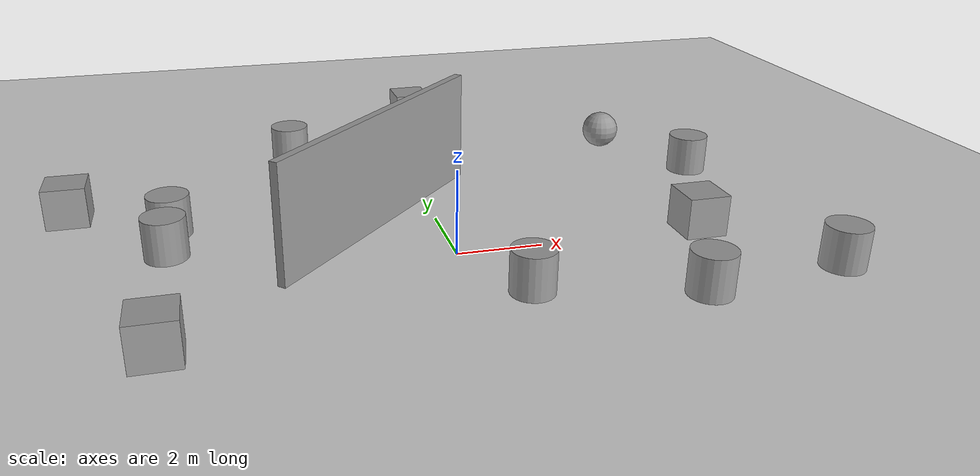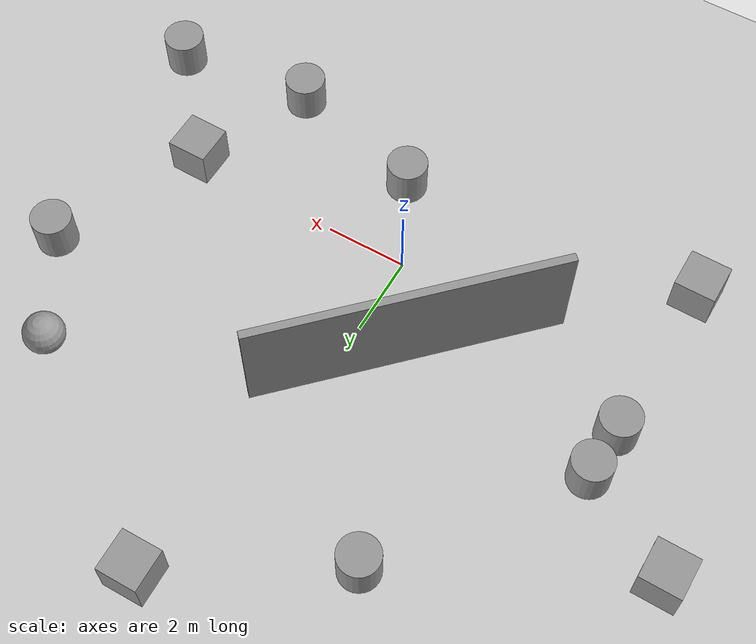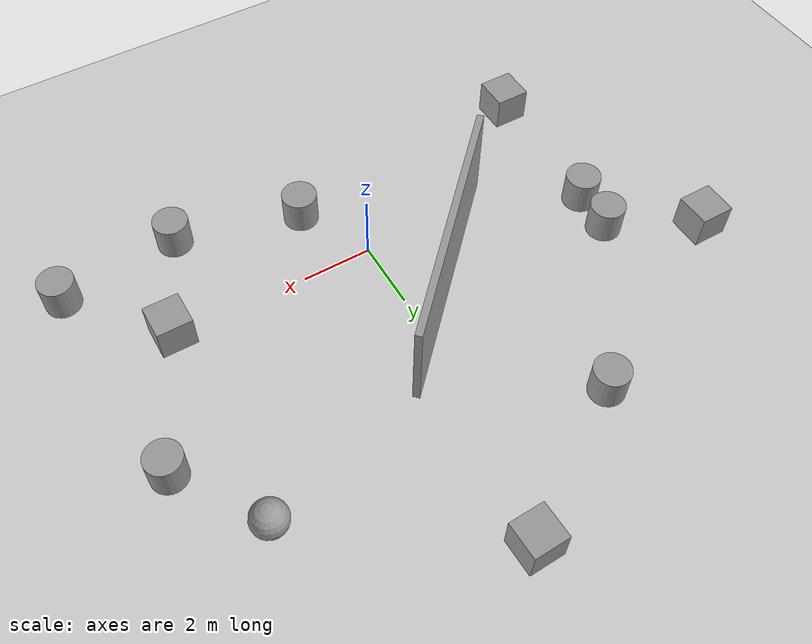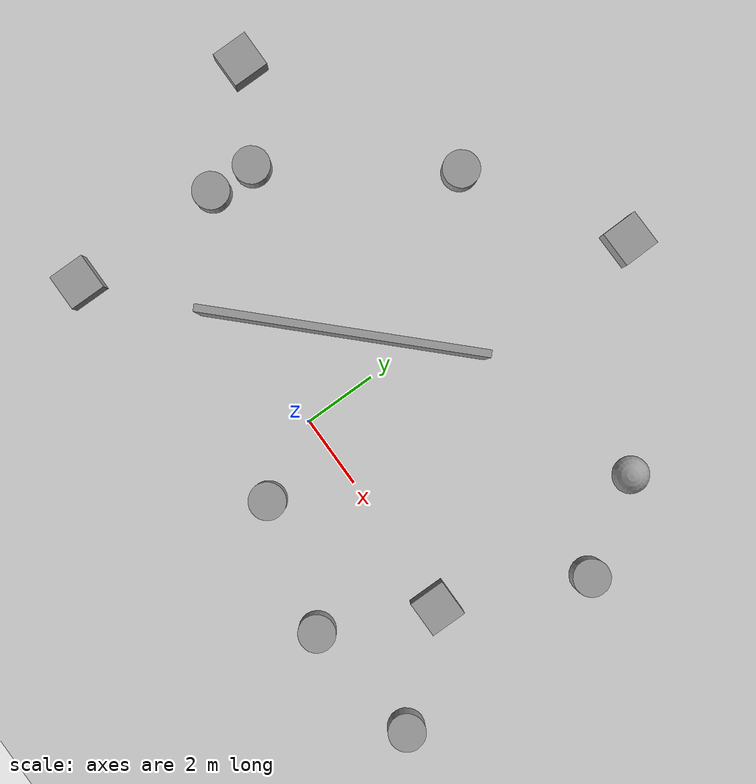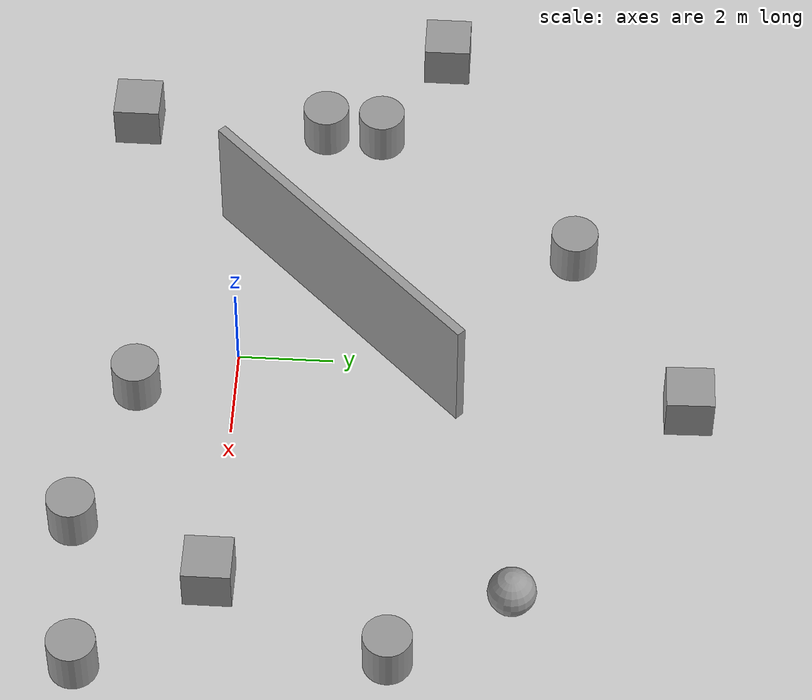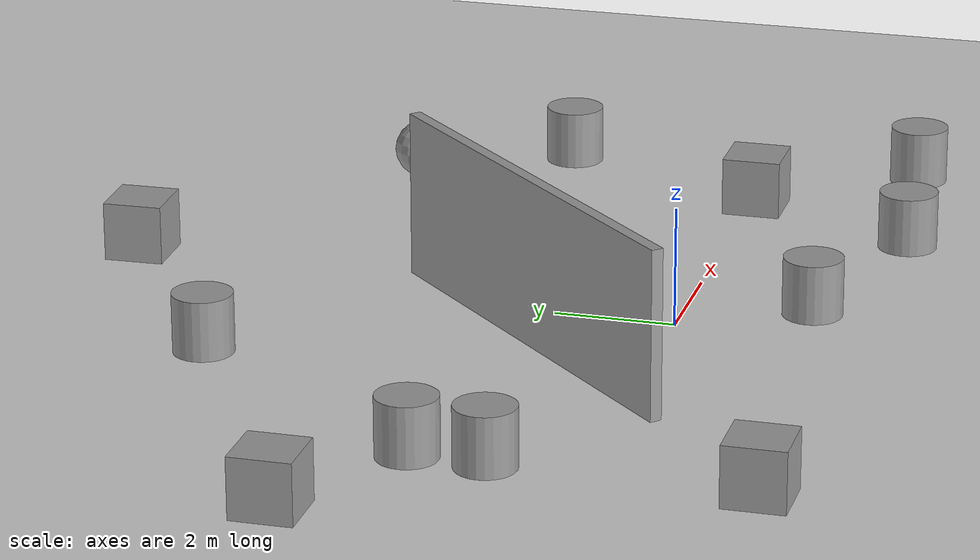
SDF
<sdf version="1.4">
 <world name="default">
  <light name="sun" type="directional">
   <pose>0 0 10 0 -0 0</pose>
   <diffuse>0.8 0.8 0.8 1</diffuse>
   <specular>0.2 0.2 0.2 1</specular>
   <attenuation>
    <range>1000</range>
    <constant>0.9</constant>
    <linear>0.01</linear>
    <quadratic>0.001</quadratic>
   </attenuation>
   <direction>-0.5 0.1 -0.9</direction>
  </light>
  <model name="ground_plane">
   <static>1</static>
   <link name="link">
    <collision name="collision">
     <geometry><plane><normal>0 0 1</normal><size>100 100</size></plane></geometry>
     <surface><friction><ode><mu>100</mu><mu2>50</mu2></ode></friction></surface>
    </collision>
    <visual name="visual">
     <cast_shadows>0</cast_shadows>
     <geometry><plane><normal>0 0 1</normal><size>100 100</size></plane></geometry>
     <material>
      <script><uri>file://media/materials/scripts/gazebo.material</uri><name>Gazebo/Grey</name></script>
     </material>
    </visual>
    <velocity_decay><linear>0</linear><angular>0</angular></velocity_decay>
   </link>
  </model>
  <physics type="ode">
   <max_step_size>0.001</max_step_size>
   <real_time_factor>1</real_time_factor>
   <real_time_update_rate>0</real_time_update_rate>
   <gravity>0 0 -9.8</gravity>
  </physics>
  <scene><ambient>0.4 0.4 0.4 1</ambient><background>0.7 0.7 0.7 1</background><shadows>1</shadows></scene>
  <spherical_coordinates>
   <surface_model>EARTH_WGS84</surface_model>
   <latitude_deg>0</latitude_deg>
   <longitude_deg>0</longitude_deg>
   <elevation>0</elevation>
   <heading_deg>0</heading_deg>
  </spherical_coordinates>
  <model name="unit_cylinder_2_0">
   <pose>4.57299 -3 0.499992 0 -0 0</pose>
   <link name="link">
    <inertial>
     <mass>1</mass>
     <inertia><ixx>1</ixx><ixy>0</ixy><ixz>0</ixz><iyy>1</iyy><iyz>0</iyz><izz>1</izz></inertia>
    </inertial>
    <collision name="collision">
     <geometry><cylinder><radius>0.5</radius><length>1</length></cylinder></geometry>
    </collision>
    <visual name="visual">
     <geometry><cylinder><radius>0.5</radius><length>1</length></cylinder></geometry>
     <material>
      <script><uri>file://media/materials/scripts/gazebo.material</uri><name>Gazebo/Grey</name></script>
     </material>
    </visual>
    <velocity_decay><linear>0</linear><angular>0</angular></velocity_decay>
   </link>
   <static>0</static>
  </model>
  <model name="unit_cylinder_3_0">
   <pose>7.53141 3.59894 0.499998 0 -0 0</pose>
   <link name="link">
    <inertial>
     <mass>1</mass>
     <inertia><ixx>1</ixx><ixy>0</ixy><ixz>0</ixz><iyy>1</iyy><iyz>0</iyz><izz>1</izz></inertia>
    </inertial>
    <collision name="collision">
     <geometry><cylinder><radius>0.5</radius><length>1</length></cylinder></geometry>
    </collision>
    <visual name="visual">
     <geometry><cylinder><radius>0.5</radius><length>1</length></cylinder></geometry>
     <material>
      <script><uri>file://media/materials/scripts/gazebo.material</uri><name>Gazebo/Grey</name></script>
     </material>
    </visual>
    <velocity_decay><linear>0</linear><angular>0</angular></velocity_decay>
   </link>
   <static>0</static>
  </model>
  <model name="unit_cylinder_5_0">
   <pose>8 -2.59398 0.499992 0 -0 0</pose>
   <link name="link">
    <inertial>
     <mass>1</mass>
     <inertia><ixx>1</ixx><ixy>0</ixy><ixz>0</ixz><iyy>1</iyy><iyz>0</iyz><izz>1</izz></inertia>
    </inertial>
    <collision name="collision">
     <geometry><cylinder><radius>0.5</radius><length>1</length></cylinder></geometry>
    </collision>
    <visual name="visual">
     <geometry><cylinder><radius>0.5</radius><length>1</length></cylinder></geometry>
     <material>
      <script><uri>file://media/materials/scripts/gazebo.material</uri><name>Gazebo/Grey</name></script>
     </material>
    </visual>
    <velocity_decay><linear>0</linear><angular>0</angular></velocity_decay>
   </link>
   <static>0</static>
  </model>
  <model name="unit_cylinder_7_0">
   <pose>-6.23191 2.65627 0.499992 0 0 -9e-06</pose>
   <link name="link">
    <inertial>
     <mass>1</mass>
     <inertia><ixx>1</ixx><ixy>0</ixy><ixz>0</ixz><iyy>1</iyy><iyz>0</iyz><izz>1</izz></inertia>
    </inertial>
    <collision name="collision">
     <geometry><cylinder><radius>0.5</radius><length>1</length></cylinder></geometry>
    </collision>
    <visual name="visual">
     <geometry><cylinder><radius>0.5</radius><length>1</length></cylinder></geometry>
     <material>
      <script><uri>file://media/materials/scripts/gazebo.material</uri><name>Gazebo/Grey</name></script>
     </material>
    </visual>
    <velocity_decay><linear>0</linear><angular>0</angular></velocity_decay>
   </link>
   <static>0</static>
  </model>
  <model name="unit_cylinder_8_0">
   <pose>-3 7 0.499992 0 -0 0</pose>
   <link name="link">
    <inertial>
     <mass>1</mass>
     <inertia><ixx>1</ixx><ixy>0</ixy><ixz>0</ixz><iyy>1</iyy><iyz>0</iyz><izz>1</izz></inertia>
    </inertial>
    <collision name="collision">
     <geometry><cylinder><radius>0.5</radius><length>1</length></cylinder></geometry>
    </collision>
    <visual name="visual">
     <geometry><cylinder><radius>0.5</radius><length>1</length></cylinder></geometry>
     <material>
      <script><uri>file://media/materials/scripts/gazebo.material</uri><name>Gazebo/Grey</name></script>
     </material>
    </visual>
    <velocity_decay><linear>0</linear><angular>0</angular></velocity_decay>
   </link>
   <static>0</static>
  </model>
  <model name="unit_box_6_0">
   <pose>0.996816 9.49637 0.5 0 -0 0.024677</pose>
   <link name="link">
    <inertial>
     <mass>1</mass>
     <inertia><ixx>1</ixx><ixy>0</ixy><ixz>0</ixz><iyy>1</iyy><iyz>0</iyz><izz>1</izz></inertia>
    </inertial>
    <collision name="collision"><geometry><box><size>1 1 1</size></box></geometry></collision>
    <visual name="visual">
     <geometry><box><size>1 1 1</size></box></geometry>
     <material>
      <script><uri>file://media/materials/scripts/gazebo.material</uri><name>Gazebo/Grey</name></script>
     </material>
    </visual>
    <velocity_decay><linear>0</linear><angular>0</angular></velocity_decay>
   </link>
   <static>0</static>
  </model>
  <model name="unit_box_7">
   <pose>-8.61496 4.00427 0.5 0 -0 -0.000545</pose>
   <link name="link">
    <inertial>
     <mass>1</mass>
     <inertia><ixx>1</ixx><ixy>0</ixy><ixz>0</ixz><iyy>1</iyy><iyz>0</iyz><izz>1</izz></inertia>
    </inertial>
    <collision name="collision"><geometry><box><size>1 1 1</size></box></geometry></collision>
    <visual name="visual">
     <geometry><box><size>1 1 1</size></box></geometry>
     <material>
      <script><uri>file://media/materials/scripts/gazebo.material</uri><name>Gazebo/Grey</name></script>
     </material>
    </visual>
    <velocity_decay><linear>0</linear><angular>0</angular></velocity_decay>
   </link>
   <static>0</static>
  </model>
  <model name="unit_sphere_1">
   <pose>6 6 0.5 0 -0 0</pose>
   <link name="link">
    <inertial>
     <mass>1</mass>
     <inertia><ixx>1</ixx><ixy>0</ixy><ixz>0</ixz><iyy>1</iyy><iyz>0</iyz><izz>1</izz></inertia>
    </inertial>
    <collision name="collision"><geometry><sphere><radius>0.5</radius></sphere></geometry></collision>
    <visual name="visual">
     <geometry><sphere><radius>0.5</radius></sphere></geometry>
     <material>
      <script><uri>file://media/materials/scripts/gazebo.material</uri><name>Gazebo/Grey</name></script>
     </material>
    </visual>
    <velocity_decay><linear>0</linear><angular>0</angular></velocity_decay>
   </link>
   <static>0</static>
  </model>
  <model name="unit_cylinder_12">
   <pose>1.05421 -2.05418 0.499999 0 -0 -0.001434</pose>
   <link name="link">
    <inertial>
     <mass>1</mass>
     <inertia><ixx>1</ixx><ixy>0</ixy><ixz>0</ixz><iyy>1</iyy><iyz>0</iyz><izz>1</izz></inertia>
    </inertial>
    <collision name="collision">
     <geometry><cylinder><radius>0.5</radius><length>1</length></cylinder></geometry>
    </collision>
    <visual name="visual">
     <geometry><cylinder><radius>0.5</radius><length>1</length></cylinder></geometry>
     <material>
      <script><uri>file://media/materials/scripts/gazebo.material</uri><name>Gazebo/Grey</name></script>
     </material>
    </visual>
    <velocity_decay><linear>0</linear><angular>0</angular></velocity_decay>
   </link>
   <static>0</static>
  </model>
  <model name="unit_cylinder_14">
   <pose>-6.30255 1.42328 0.499992 0 -0 0.003868</pose>
   <link name="link">
    <inertial>
     <mass>1</mass>
     <inertia><ixx>1</ixx><ixy>0</ixy><ixz>0</ixz><iyy>1</iyy><iyz>0</iyz><izz>1</izz></inertia>
    </inertial>
    <collision name="collision">
     <geometry><cylinder><radius>0.5</radius><length>1</length></cylinder></geometry>
    </collision>
    <visual name="visual">
     <geometry><cylinder><radius>0.5</radius><length>1</length></cylinder></geometry>
     <material>
      <script><uri>file://media/materials/scripts/gazebo.material</uri><name>Gazebo/Grey</name></script>
     </material>
    </visual>
    <velocity_decay><linear>0</linear><angular>0</angular></velocity_decay>
   </link>
   <static>0</static>
  </model>
  <model name="unit_box_1">
   <pose>-6.39503 -2.75337 0.5 0 0 -0.002202</pose>
   <link name="link">
    <inertial>
     <mass>1</mass>
     <inertia><ixx>1</ixx><ixy>0</ixy><ixz>0</ixz><iyy>1</iyy><iyz>0</iyz><izz>1</izz></inertia>
    </inertial>
    <collision name="collision"><geometry><box><size>1 1 1</size></box></geometry></collision>
    <visual name="visual">
     <geometry><box><size>1 1 1</size></box></geometry>
     <material>
      <script><uri>file://media/materials/scripts/gazebo.material</uri><name>Gazebo/Grey</name></script>
     </material>
    </visual>
    <velocity_decay><linear>0</linear><angular>0</angular></velocity_decay>
   </link>
   <static>0</static>
  </model>
  <model name="unit_box_2">
   <pose>5.86063 -0.094956 0.5 0 -0 0</pose>
   <link name="link">
    <inertial>
     <mass>1</mass>
     <inertia><ixx>1</ixx><ixy>0</ixy><ixz>0</ixz><iyy>1</iyy><iyz>0</iyz><izz>1</izz></inertia>
    </inertial>
    <collision name="collision"><geometry><box><size>1 1 1</size></box></geometry></collision>
    <visual name="visual">
     <geometry><box><size>1 1 1</size></box></geometry>
     <material>
      <script><uri>file://media/materials/scripts/gazebo.material</uri><name>Gazebo/Grey</name></script>
     </material>
    </visual>
    <velocity_decay><linear>0</linear><angular>0</angular></velocity_decay>
   </link>
   <static>0</static>
  </model>
  <model name="grey_wall">
   <static>1</static>
   <link name="link">
    <pose>0 0 1.4 0 -0 0</pose>
    <collision name="collision"><geometry><box><size>7.5 0.2 2.8</size></box></geometry></collision>
    <visual name="visual">
     <cast_shadows>0</cast_shadows>
     <geometry><box><size>7.5 0.2 2.8</size></box></geometry>
     <material>
      <script>
       <uri>model://grey_wall/materials/scripts</uri>
       <uri>model://grey_wall/materials/textures</uri>
       <name>vrc/grey_wall</name>
      </script>
     </material>
    </visual>
    <velocity_decay><linear>0</linear><angular>0</angular></velocity_decay>
   </link>
   <pose>-1.33621 2.0586 0 0 -0 0.795107</pose>
  </model>
 </world>
</sdf>
